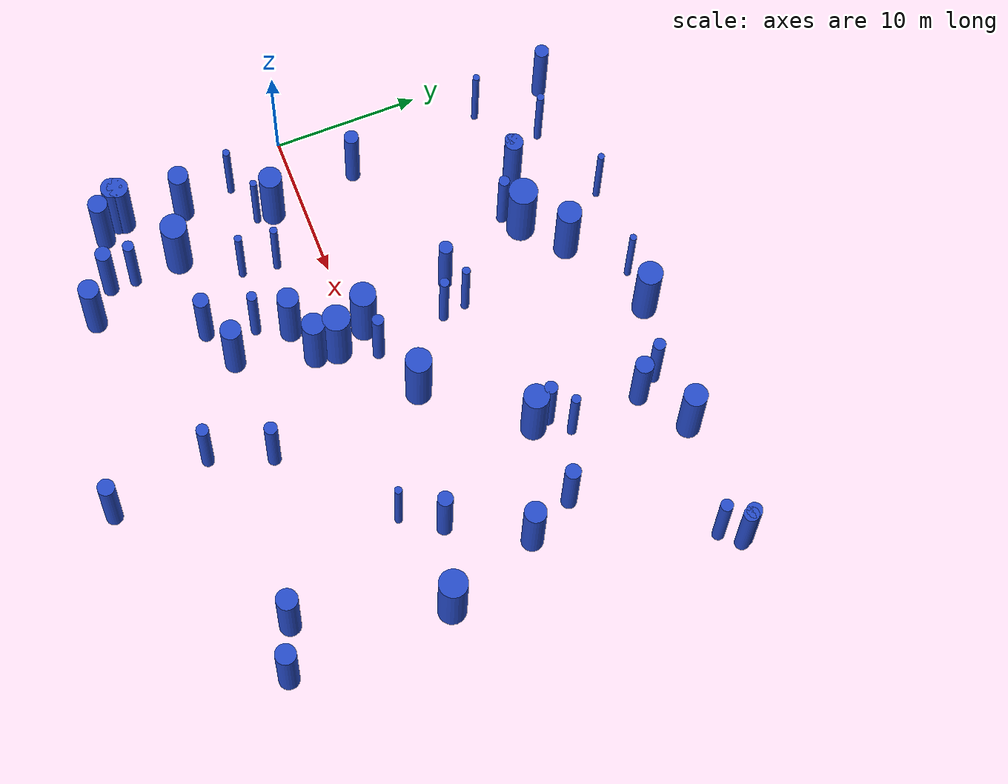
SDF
<sdf version="1.7">
 <world name="default">
  <model name="11">
   <static>1</static>
   <link name="link">
    <inertial>
     <mass>2</mass>
     <inertia><ixx>6.40175</ixx><ixy>0</ixy><ixz>0</ixz><iyy>6.40175</iyy><iyz>0</iyz><izz>0.803492</izz></inertia>
    </inertial>
    <collision name="collision">
     <geometry><cylinder><length>6</length><radius>0.896377</radius></cylinder></geometry>
     <surface><contact><collide_without_contact>1</collide_without_contact></contact></surface>
    </collision>
    <visual name="visual">
     <geometry><cylinder><length>6</length><radius>0.896377</radius></cylinder></geometry>
     <material>
      <script><uri>file://media/materials/scripts/gazebo.material</uri><name>Gazebo/Blue</name></script>
     </material>
    </visual>
    <gravity>0</gravity>
   </link>
   <pose>20.6606 2.5794 3 0 -0 0</pose>
  </model>
  <model name="17">
   <static>1</static>
   <link name="link">
    <inertial>
     <mass>2</mass>
     <inertia><ixx>6.09343</ixx><ixy>0</ixy><ixz>0</ixz><iyy>6.09343</iyy><iyz>0</iyz><izz>0.186852</izz></inertia>
    </inertial>
    <collision name="collision">
     <geometry><cylinder><length>6</length><radius>0.432264</radius></cylinder></geometry>
     <surface><contact><collide_without_contact>1</collide_without_contact></contact></surface>
    </collision>
    <visual name="visual">
     <geometry><cylinder><length>6</length><radius>0.432264</radius></cylinder></geometry>
     <material>
      <script><uri>file://media/materials/scripts/gazebo.material</uri><name>Gazebo/Blue</name></script>
     </material>
    </visual>
    <gravity>0</gravity>
   </link>
   <pose>20.2077 -12.26 3 0 -0 0</pose>
  </model>
  <model name="25">
   <static>1</static>
   <link name="link">
    <inertial>
     <mass>2</mass>
     <inertia><ixx>6.38374</ixx><ixy>0</ixy><ixz>0</ixz><iyy>6.38374</iyy><iyz>0</iyz><izz>0.767485</izz></inertia>
    </inertial>
    <collision name="collision">
     <geometry><cylinder><length>6</length><radius>0.876062</radius></cylinder></geometry>
     <surface><contact><collide_without_contact>1</collide_without_contact></contact></surface>
    </collision>
    <visual name="visual">
     <geometry><cylinder><length>6</length><radius>0.876062</radius></cylinder></geometry>
     <material>
      <script><uri>file://media/materials/scripts/gazebo.material</uri><name>Gazebo/Blue</name></script>
     </material>
    </visual>
    <gravity>0</gravity>
   </link>
   <pose>25.7538 8.85397 3 0 -0 0</pose>
  </model>
  <model name="27">
   <static>1</static>
   <link name="link">
    <inertial>
     <mass>2</mass>
     <inertia>
      <ixx>6.03934</ixx>
      <ixy>0</ixy>
      <ixz>0</ixz>
      <iyy>6.03934</iyy>
      <iyz>0</iyz>
      <izz>0.0786724</izz>
     </inertia>
    </inertial>
    <collision name="collision">
     <geometry><cylinder><length>6</length><radius>0.280486</radius></cylinder></geometry>
     <surface><contact><collide_without_contact>1</collide_without_contact></contact></surface>
    </collision>
    <visual name="visual">
     <geometry><cylinder><length>6</length><radius>0.280486</radius></cylinder></geometry>
     <material>
      <script><uri>file://media/materials/scripts/gazebo.material</uri><name>Gazebo/Blue</name></script>
     </material>
    </visual>
    <gravity>0</gravity>
   </link>
   <pose>15.8342 7.79594 3 0 -0 0</pose>
  </model>
  <model name="30">
   <static>1</static>
   <link name="link">
    <inertial>
     <mass>2</mass>
     <inertia><ixx>6.13157</ixx><ixy>0</ixy><ixz>0</ixz><iyy>6.13157</iyy><iyz>0</iyz><izz>0.263136</izz></inertia>
    </inertial>
    <collision name="collision">
     <geometry><cylinder><length>6</length><radius>0.512968</radius></cylinder></geometry>
     <surface><contact><collide_without_contact>1</collide_without_contact></contact></surface>
    </collision>
    <visual name="visual">
     <geometry><cylinder><length>6</length><radius>0.512968</radius></cylinder></geometry>
     <material>
      <script><uri>file://media/materials/scripts/gazebo.material</uri><name>Gazebo/Blue</name></script>
     </material>
    </visual>
    <gravity>0</gravity>
   </link>
   <pose>38.1472 18.7277 3 0 -0 0</pose>
  </model>
  <model name="33">
   <static>1</static>
   <link name="link">
    <inertial>
     <mass>2</mass>
     <inertia><ixx>6.14607</ixx><ixy>0</ixy><ixz>0</ixz><iyy>6.14607</iyy><iyz>0</iyz><izz>0.292135</izz></inertia>
    </inertial>
    <collision name="collision">
     <geometry><cylinder><length>6</length><radius>0.540495</radius></cylinder></geometry>
     <surface><contact><collide_without_contact>1</collide_without_contact></contact></surface>
    </collision>
    <visual name="visual">
     <geometry><cylinder><length>6</length><radius>0.540495</radius></cylinder></geometry>
     <material>
      <script><uri>file://media/materials/scripts/gazebo.material</uri><name>Gazebo/Blue</name></script>
     </material>
    </visual>
    <gravity>0</gravity>
   </link>
   <pose>11.5808 -9.34368 3 0 -0 0</pose>
  </model>
  <model name="34">
   <static>1</static>
   <link name="link">
    <inertial>
     <mass>2</mass>
     <inertia><ixx>6.25743</ixx><ixy>0</ixy><ixz>0</ixz><iyy>6.25743</iyy><iyz>0</iyz><izz>0.514864</izz></inertia>
    </inertial>
    <collision name="collision">
     <geometry><cylinder><length>6</length><radius>0.717541</radius></cylinder></geometry>
     <surface><contact><collide_without_contact>1</collide_without_contact></contact></surface>
    </collision>
    <visual name="visual">
     <geometry><cylinder><length>6</length><radius>0.717541</radius></cylinder></geometry>
     <material>
      <script><uri>file://media/materials/scripts/gazebo.material</uri><name>Gazebo/Blue</name></script>
     </material>
    </visual>
    <gravity>0</gravity>
   </link>
   <pose>36.2442 -12.3285 3 0 -0 0</pose>
  </model>
  <model name="35">
   <static>1</static>
   <link name="link">
    <inertial>
     <mass>2</mass>
     <inertia><ixx>6.0268</ixx><ixy>0</ixy><ixz>0</ixz><iyy>6.0268</iyy><iyz>0</iyz><izz>0.0535936</izz></inertia>
    </inertial>
    <collision name="collision">
     <geometry><cylinder><length>6</length><radius>0.231503</radius></cylinder></geometry>
     <surface><contact><collide_without_contact>1</collide_without_contact></contact></surface>
    </collision>
    <visual name="visual">
     <geometry><cylinder><length>6</length><radius>0.231503</radius></cylinder></geometry>
     <material>
      <script><uri>file://media/materials/scripts/gazebo.material</uri><name>Gazebo/Blue</name></script>
     </material>
    </visual>
    <gravity>0</gravity>
   </link>
   <pose>11.2769 19.3033 3 0 -0 0</pose>
  </model>
  <model name="43">
   <static>1</static>
   <link name="link">
    <inertial>
     <mass>2</mass>
     <inertia><ixx>6.09019</ixx><ixy>0</ixy><ixz>0</ixz><iyy>6.09019</iyy><iyz>0</iyz><izz>0.180376</izz></inertia>
    </inertial>
    <collision name="collision">
     <geometry><cylinder><length>6</length><radius>0.424707</radius></cylinder></geometry>
     <surface><contact><collide_without_contact>1</collide_without_contact></contact></surface>
    </collision>
    <visual name="visual">
     <geometry><cylinder><length>6</length><radius>0.424707</radius></cylinder></geometry>
     <material>
      <script><uri>file://media/materials/scripts/gazebo.material</uri><name>Gazebo/Blue</name></script>
     </material>
    </visual>
    <gravity>0</gravity>
   </link>
   <pose>25.2338 17.7403 3 0 -0 0</pose>
  </model>
  <model name="44">
   <static>1</static>
   <link name="link">
    <inertial>
     <mass>2</mass>
     <inertia><ixx>6.09258</ixx><ixy>0</ixy><ixz>0</ixz><iyy>6.09258</iyy><iyz>0</iyz><izz>0.18516</izz></inertia>
    </inertial>
    <collision name="collision">
     <geometry><cylinder><length>6</length><radius>0.430302</radius></cylinder></geometry>
     <surface><contact><collide_without_contact>1</collide_without_contact></contact></surface>
    </collision>
    <visual name="visual">
     <geometry><cylinder><length>6</length><radius>0.430302</radius></cylinder></geometry>
     <material>
      <script><uri>file://media/materials/scripts/gazebo.material</uri><name>Gazebo/Blue</name></script>
     </material>
    </visual>
    <gravity>0</gravity>
   </link>
   <pose>37.0413 17.4916 3 0 -0 0</pose>
  </model>
  <model name="46">
   <static>1</static>
   <link name="link">
    <inertial>
     <mass>2</mass>
     <inertia><ixx>6.25968</ixx><ixy>0</ixy><ixz>0</ixz><iyy>6.25968</iyy><iyz>0</iyz><izz>0.51936</izz></inertia>
    </inertial>
    <collision name="collision">
     <geometry><cylinder><length>6</length><radius>0.720666</radius></cylinder></geometry>
     <surface><contact><collide_without_contact>1</collide_without_contact></contact></surface>
    </collision>
    <visual name="visual">
     <geometry><cylinder><length>6</length><radius>0.720666</radius></cylinder></geometry>
     <material>
      <script><uri>file://media/materials/scripts/gazebo.material</uri><name>Gazebo/Blue</name></script>
     </material>
    </visual>
    <gravity>0</gravity>
   </link>
   <pose>1.87089 -11.8641 3 0 -0 0</pose>
  </model>
  <model name="50">
   <static>1</static>
   <link name="link">
    <inertial>
     <mass>2</mass>
     <inertia><ixx>6.08298</ixx><ixy>0</ixy><ixz>0</ixz><iyy>6.08298</iyy><iyz>0</iyz><izz>0.16596</izz></inertia>
    </inertial>
    <collision name="collision">
     <geometry><cylinder><length>6</length><radius>0.407382</radius></cylinder></geometry>
     <surface><contact><collide_without_contact>1</collide_without_contact></contact></surface>
    </collision>
    <visual name="visual">
     <geometry><cylinder><length>6</length><radius>0.407382</radius></cylinder></geometry>
     <material>
      <script><uri>file://media/materials/scripts/gazebo.material</uri><name>Gazebo/Blue</name></script>
     </material>
    </visual>
    <gravity>0</gravity>
   </link>
   <pose>17.0476 1.08046 3 0 -0 0</pose>
  </model>
  <model name="53">
   <static>1</static>
   <link name="link">
    <inertial>
     <mass>2</mass>
     <inertia><ixx>6.36119</ixx><ixy>0</ixy><ixz>0</ixz><iyy>6.36119</iyy><iyz>0</iyz><izz>0.722384</izz></inertia>
    </inertial>
    <collision name="collision">
     <geometry><cylinder><length>6</length><radius>0.849932</radius></cylinder></geometry>
     <surface><contact><collide_without_contact>1</collide_without_contact></contact></surface>
    </collision>
    <visual name="visual">
     <geometry><cylinder><length>6</length><radius>0.849932</radius></cylinder></geometry>
     <material>
      <script><uri>file://media/materials/scripts/gazebo.material</uri><name>Gazebo/Blue</name></script>
     </material>
    </visual>
    <gravity>0</gravity>
   </link>
   <pose>20.3305 19.1279 3 0 -0 0</pose>
  </model>
  <model name="55">
   <static>1</static>
   <link name="link">
    <inertial>
     <mass>2</mass>
     <inertia><ixx>6.27588</ixx><ixy>0</ixy><ixz>0</ixz><iyy>6.27588</iyy><iyz>0</iyz><izz>0.55177</izz></inertia>
    </inertial>
    <collision name="collision">
     <geometry><cylinder><length>6</length><radius>0.742812</radius></cylinder></geometry>
     <surface><contact><collide_without_contact>1</collide_without_contact></contact></surface>
    </collision>
    <visual name="visual">
     <geometry><cylinder><length>6</length><radius>0.742812</radius></cylinder></geometry>
     <material>
      <script><uri>file://media/materials/scripts/gazebo.material</uri><name>Gazebo/Blue</name></script>
     </material>
    </visual>
    <gravity>0</gravity>
   </link>
   <pose>32.8908 -11.0334 3 0 -0 0</pose>
  </model>
  <model name="58">
   <static>1</static>
   <link name="link">
    <inertial>
     <mass>2</mass>
     <inertia><ixx>6.48296</ixx><ixy>0</ixy><ixz>0</ixz><iyy>6.48296</iyy><iyz>0</iyz><izz>0.96592</izz></inertia>
    </inertial>
    <collision name="collision">
     <geometry><cylinder><length>6</length><radius>0.982812</radius></cylinder></geometry>
     <surface><contact><collide_without_contact>1</collide_without_contact></contact></surface>
    </collision>
    <visual name="visual">
     <geometry><cylinder><length>6</length><radius>0.982812</radius></cylinder></geometry>
     <material>
      <script><uri>file://media/materials/scripts/gazebo.material</uri><name>Gazebo/Blue</name></script>
     </material>
    </visual>
    <gravity>0</gravity>
   </link>
   <pose>11.804 13.4618 3 0 -0 0</pose>
  </model>
  <model name="59">
   <static>1</static>
   <link name="link">
    <inertial>
     <mass>2</mass>
     <inertia>
      <ixx>6.03513</ixx>
      <ixy>0</ixy>
      <ixz>0</ixz>
      <iyy>6.03513</iyy>
      <iyz>0</iyz>
      <izz>0.0702655</izz>
     </inertia>
    </inertial>
    <collision name="collision">
     <geometry><cylinder><length>6</length><radius>0.265076</radius></cylinder></geometry>
     <surface><contact><collide_without_contact>1</collide_without_contact></contact></surface>
    </collision>
    <visual name="visual">
     <geometry><cylinder><length>6</length><radius>0.265076</radius></cylinder></geometry>
     <material>
      <script><uri>file://media/materials/scripts/gazebo.material</uri><name>Gazebo/Blue</name></script>
     </material>
    </visual>
    <gravity>0</gravity>
   </link>
   <pose>28.5908 -1.85594 3 0 -0 0</pose>
  </model>
  <model name="60">
   <static>1</static>
   <link name="link">
    <inertial>
     <mass>2</mass>
     <inertia><ixx>6.39524</ixx><ixy>0</ixy><ixz>0</ixz><iyy>6.39524</iyy><iyz>0</iyz><izz>0.790477</izz></inertia>
    </inertial>
    <collision name="collision">
     <geometry><cylinder><length>6</length><radius>0.889088</radius></cylinder></geometry>
     <surface><contact><collide_without_contact>1</collide_without_contact></contact></surface>
    </collision>
    <visual name="visual">
     <geometry><cylinder><length>6</length><radius>0.889088</radius></cylinder></geometry>
     <material>
      <script><uri>file://media/materials/scripts/gazebo.material</uri><name>Gazebo/Blue</name></script>
     </material>
    </visual>
    <gravity>0</gravity>
   </link>
   <pose>14.9939 0.797519 3 0 -0 0</pose>
  </model>
  <model name="66">
   <static>1</static>
   <link name="link">
    <inertial>
     <mass>2</mass>
     <inertia><ixx>6.22425</ixx><ixy>0</ixy><ixz>0</ixz><iyy>6.22425</iyy><iyz>0</iyz><izz>0.448499</izz></inertia>
    </inertial>
    <collision name="collision">
     <geometry><cylinder><length>6</length><radius>0.6697</radius></cylinder></geometry>
     <surface><contact><collide_without_contact>1</collide_without_contact></contact></surface>
    </collision>
    <visual name="visual">
     <geometry><cylinder><length>6</length><radius>0.6697</radius></cylinder></geometry>
     <material>
      <script><uri>file://media/materials/scripts/gazebo.material</uri><name>Gazebo/Blue</name></script>
     </material>
    </visual>
    <gravity>0</gravity>
   </link>
   <pose>2.54749 -13.4917 3 0 -0 0</pose>
  </model>
  <model name="68">
   <static>1</static>
   <link name="link">
    <inertial>
     <mass>2</mass>
     <inertia>
      <ixx>6.02714</ixx>
      <ixy>0</ixy>
      <ixz>0</ixz>
      <iyy>6.02714</iyy>
      <iyz>0</iyz>
      <izz>0.0542715</izz>
     </inertia>
    </inertial>
    <collision name="collision">
     <geometry><cylinder><length>6</length><radius>0.232962</radius></cylinder></geometry>
     <surface><contact><collide_without_contact>1</collide_without_contact></contact></surface>
    </collision>
    <visual name="visual">
     <geometry><cylinder><length>6</length><radius>0.232962</radius></cylinder></geometry>
     <material>
      <script><uri>file://media/materials/scripts/gazebo.material</uri><name>Gazebo/Blue</name></script>
     </material>
    </visual>
    <gravity>0</gravity>
   </link>
   <pose>17.5427 19.052 3 0 -0 0</pose>
  </model>
  <model name="70">
   <static>1</static>
   <link name="link">
    <inertial>
     <mass>2</mass>
     <inertia><ixx>6.07674</ixx><ixy>0</ixy><ixz>0</ixz><iyy>6.07674</iyy><iyz>0</iyz><izz>0.15348</izz></inertia>
    </inertial>
    <collision name="collision">
     <geometry><cylinder><length>6</length><radius>0.391765</radius></cylinder></geometry>
     <surface><contact><collide_without_contact>1</collide_without_contact></contact></surface>
    </collision>
    <visual name="visual">
     <geometry><cylinder><length>6</length><radius>0.391765</radius></cylinder></geometry>
     <material>
      <script><uri>file://media/materials/scripts/gazebo.material</uri><name>Gazebo/Blue</name></script>
     </material>
    </visual>
    <gravity>0</gravity>
   </link>
   <pose>6.17959 -12.5655 3 0 -0 0</pose>
  </model>
  <model name="73">
   <static>1</static>
   <link name="link">
    <inertial>
     <mass>2</mass>
     <inertia><ixx>6.48116</ixx><ixy>0</ixy><ixz>0</ixz><iyy>6.48116</iyy><iyz>0</iyz><izz>0.962329</izz></inertia>
    </inertial>
    <collision name="collision">
     <geometry><cylinder><length>6</length><radius>0.980984</radius></cylinder></geometry>
     <surface><contact><collide_without_contact>1</collide_without_contact></contact></surface>
    </collision>
    <visual name="visual">
     <geometry><cylinder><length>6</length><radius>0.980984</radius></cylinder></geometry>
     <material>
      <script><uri>file://media/materials/scripts/gazebo.material</uri><name>Gazebo/Blue</name></script>
     </material>
    </visual>
    <gravity>0</gravity>
   </link>
   <pose>35.6719 -0.795508 3 0 -0 0</pose>
  </model>
  <model name="74">
   <static>1</static>
   <link name="link">
    <inertial>
     <mass>2</mass>
     <inertia><ixx>6.14646</ixx><ixy>0</ixy><ixz>0</ixz><iyy>6.14646</iyy><iyz>0</iyz><izz>0.292928</izz></inertia>
    </inertial>
    <collision name="collision">
     <geometry><cylinder><length>6</length><radius>0.541228</radius></cylinder></geometry>
     <surface><contact><collide_without_contact>1</collide_without_contact></contact></surface>
    </collision>
    <visual name="visual">
     <geometry><cylinder><length>6</length><radius>0.541228</radius></cylinder></geometry>
     <material>
      <script><uri>file://media/materials/scripts/gazebo.material</uri><name>Gazebo/Blue</name></script>
     </material>
    </visual>
    <gravity>0</gravity>
   </link>
   <pose>31.4047 9.13593 3 0 -0 0</pose>
  </model>
  <model name="76">
   <static>1</static>
   <link name="link">
    <inertial>
     <mass>2</mass>
     <inertia><ixx>6.25283</ixx><ixy>0</ixy><ixz>0</ixz><iyy>6.25283</iyy><iyz>0</iyz><izz>0.505667</izz></inertia>
    </inertial>
    <collision name="collision">
     <geometry><cylinder><length>6</length><radius>0.711103</radius></cylinder></geometry>
     <surface><contact><collide_without_contact>1</collide_without_contact></contact></surface>
    </collision>
    <visual name="visual">
     <geometry><cylinder><length>6</length><radius>0.711103</radius></cylinder></geometry>
     <material>
      <script><uri>file://media/materials/scripts/gazebo.material</uri><name>Gazebo/Blue</name></script>
     </material>
    </visual>
    <gravity>0</gravity>
   </link>
   <pose>8.20094 -16.0225 3 0 -0 0</pose>
  </model>
  <model name="77">
   <static>1</static>
   <link name="link">
    <inertial>
     <mass>2</mass>
     <inertia>
      <ixx>6.03098</ixx>
      <ixy>0</ixy>
      <ixz>0</ixz>
      <iyy>6.03098</iyy>
      <iyz>0</iyz>
      <izz>0.0619636</izz>
     </inertia>
    </inertial>
    <collision name="collision">
     <geometry><cylinder><length>6</length><radius>0.248925</radius></cylinder></geometry>
     <surface><contact><collide_without_contact>1</collide_without_contact></contact></surface>
    </collision>
    <visual name="visual">
     <geometry><cylinder><length>6</length><radius>0.248925</radius></cylinder></geometry>
     <material>
      <script><uri>file://media/materials/scripts/gazebo.material</uri><name>Gazebo/Blue</name></script>
     </material>
    </visual>
    <gravity>0</gravity>
   </link>
   <pose>2.03012 -4.19481 3 0 -0 0</pose>
  </model>
  <model name="79">
   <static>1</static>
   <link name="link">
    <inertial>
     <mass>2</mass>
     <inertia><ixx>6.14495</ixx><ixy>0</ixy><ixz>0</ixz><iyy>6.14495</iyy><iyz>0</iyz><izz>0.289907</izz></inertia>
    </inertial>
    <collision name="collision">
     <geometry><cylinder><length>6</length><radius>0.53843</radius></cylinder></geometry>
     <surface><contact><collide_without_contact>1</collide_without_contact></contact></surface>
    </collision>
    <visual name="visual">
     <geometry><cylinder><length>6</length><radius>0.53843</radius></cylinder></geometry>
     <material>
      <script><uri>file://media/materials/scripts/gazebo.material</uri><name>Gazebo/Blue</name></script>
     </material>
    </visual>
    <gravity>0</gravity>
   </link>
   <pose>37.9749 19.0124 3 0 -0 0</pose>
  </model>
  <model name="82">
   <static>1</static>
   <link name="link">
    <inertial>
     <mass>2</mass>
     <inertia><ixx>6.27494</ixx><ixy>0</ixy><ixz>0</ixz><iyy>6.27494</iyy><iyz>0</iyz><izz>0.549877</izz></inertia>
    </inertial>
    <collision name="collision">
     <geometry><cylinder><length>6</length><radius>0.741537</radius></cylinder></geometry>
     <surface><contact><collide_without_contact>1</collide_without_contact></contact></surface>
    </collision>
    <visual name="visual">
     <geometry><cylinder><length>6</length><radius>0.741537</radius></cylinder></geometry>
     <material>
      <script><uri>file://media/materials/scripts/gazebo.material</uri><name>Gazebo/Blue</name></script>
     </material>
    </visual>
    <gravity>0</gravity>
   </link>
   <pose>13.4562 -3.93051 3 0 -0 0</pose>
  </model>
  <model name="90">
   <static>1</static>
   <link name="link">
    <inertial>
     <mass>2</mass>
     <inertia><ixx>6.05078</ixx><ixy>0</ixy><ixz>0</ixz><iyy>6.05078</iyy><iyz>0</iyz><izz>0.101566</izz></inertia>
    </inertial>
    <collision name="collision">
     <geometry><cylinder><length>6</length><radius>0.318694</radius></cylinder></geometry>
     <surface><contact><collide_without_contact>1</collide_without_contact></contact></surface>
    </collision>
    <visual name="visual">
     <geometry><cylinder><length>6</length><radius>0.318694</radius></cylinder></geometry>
     <material>
      <script><uri>file://media/materials/scripts/gazebo.material</uri><name>Gazebo/Blue</name></script>
     </material>
    </visual>
    <gravity>0</gravity>
   </link>
   <pose>26.8432 11.1855 3 0 -0 0</pose>
  </model>
  <model name="93">
   <static>1</static>
   <link name="link">
    <inertial>
     <mass>2</mass>
     <inertia>
      <ixx>6.02703</ixx>
      <ixy>0</ixy>
      <ixz>0</ixz>
      <iyy>6.02703</iyy>
      <iyz>0</iyz>
      <izz>0.0540589</izz>
     </inertia>
    </inertial>
    <collision name="collision">
     <geometry><cylinder><length>6</length><radius>0.232506</radius></cylinder></geometry>
     <surface><contact><collide_without_contact>1</collide_without_contact></contact></surface>
    </collision>
    <visual name="visual">
     <geometry><cylinder><length>6</length><radius>0.232506</radius></cylinder></geometry>
     <material>
      <script><uri>file://media/materials/scripts/gazebo.material</uri><name>Gazebo/Blue</name></script>
     </material>
    </visual>
    <gravity>0</gravity>
   </link>
   <pose>2.75391 13.5982 3 0 -0 0</pose>
  </model>
  <model name="94">
   <static>1</static>
   <link name="link">
    <inertial>
     <mass>2</mass>
     <inertia><ixx>6.05397</ixx><ixy>0</ixy><ixz>0</ixz><iyy>6.05397</iyy><iyz>0</iyz><izz>0.107946</izz></inertia>
    </inertial>
    <collision name="collision">
     <geometry><cylinder><length>6</length><radius>0.328552</radius></cylinder></geometry>
     <surface><contact><collide_without_contact>1</collide_without_contact></contact></surface>
    </collision>
    <visual name="visual">
     <geometry><cylinder><length>6</length><radius>0.328552</radius></cylinder></geometry>
     <material>
      <script><uri>file://media/materials/scripts/gazebo.material</uri><name>Gazebo/Blue</name></script>
     </material>
    </visual>
    <gravity>0</gravity>
   </link>
   <pose>16.1127 6.14078 3 0 -0 0</pose>
  </model>
  <model name="100">
   <static>1</static>
   <link name="link">
    <inertial>
     <mass>2</mass>
     <inertia><ixx>6.26324</ixx><ixy>0</ixy><ixz>0</ixz><iyy>6.26324</iyy><iyz>0</iyz><izz>0.526477</izz></inertia>
    </inertial>
    <collision name="collision">
     <geometry><cylinder><length>6</length><radius>0.725588</radius></cylinder></geometry>
     <surface><contact><collide_without_contact>1</collide_without_contact></contact></surface>
    </collision>
    <visual name="visual">
     <geometry><cylinder><length>6</length><radius>0.725588</radius></cylinder></geometry>
     <material>
      <script><uri>file://media/materials/scripts/gazebo.material</uri><name>Gazebo/Blue</name></script>
     </material>
    </visual>
    <gravity>0</gravity>
   </link>
   <pose>1.74931 -12.2597 3 0 -0 0</pose>
  </model>
  <model name="101">
   <static>1</static>
   <link name="link">
    <inertial>
     <mass>2</mass>
     <inertia><ixx>6.08143</ixx><ixy>0</ixy><ixz>0</ixz><iyy>6.08143</iyy><iyz>0</iyz><izz>0.162867</izz></inertia>
    </inertial>
    <collision name="collision">
     <geometry><cylinder><length>6</length><radius>0.403568</radius></cylinder></geometry>
     <surface><contact><collide_without_contact>1</collide_without_contact></contact></surface>
    </collision>
    <visual name="visual">
     <geometry><cylinder><length>6</length><radius>0.403568</radius></cylinder></geometry>
     <material>
      <script><uri>file://media/materials/scripts/gazebo.material</uri><name>Gazebo/Blue</name></script>
     </material>
    </visual>
    <gravity>0</gravity>
   </link>
   <pose>7.91269 14.1049 3 0 -0 0</pose>
  </model>
  <model name="103">
   <static>1</static>
   <link name="link">
    <inertial>
     <mass>2</mass>
     <inertia><ixx>6.25403</ixx><ixy>0</ixy><ixz>0</ixz><iyy>6.25403</iyy><iyz>0</iyz><izz>0.508067</izz></inertia>
    </inertial>
    <collision name="collision">
     <geometry><cylinder><length>6</length><radius>0.712788</radius></cylinder></geometry>
     <surface><contact><collide_without_contact>1</collide_without_contact></contact></surface>
    </collision>
    <visual name="visual">
     <geometry><cylinder><length>6</length><radius>0.712788</radius></cylinder></geometry>
     <material>
      <script><uri>file://media/materials/scripts/gazebo.material</uri><name>Gazebo/Blue</name></script>
     </material>
    </visual>
    <gravity>0</gravity>
   </link>
   <pose>14.2634 -8.21294 3 0 -0 0</pose>
  </model>
  <model name="104">
   <static>1</static>
   <link name="link">
    <inertial>
     <mass>2</mass>
     <inertia>
      <ixx>6.02987</ixx>
      <ixy>0</ixy>
      <ixz>0</ixz>
      <iyy>6.02987</iyy>
      <iyz>0</iyz>
      <izz>0.0597419</izz>
     </inertia>
    </inertial>
    <collision name="collision">
     <geometry><cylinder><length>6</length><radius>0.244422</radius></cylinder></geometry>
     <surface><contact><collide_without_contact>1</collide_without_contact></contact></surface>
    </collision>
    <visual name="visual">
     <geometry><cylinder><length>6</length><radius>0.244422</radius></cylinder></geometry>
     <material>
      <script><uri>file://media/materials/scripts/gazebo.material</uri><name>Gazebo/Blue</name></script>
     </material>
    </visual>
    <gravity>0</gravity>
   </link>
   <pose>4.82024 -3.24521 3 0 -0 0</pose>
  </model>
  <model name="111">
   <static>1</static>
   <link name="link">
    <inertial>
     <mass>2</mass>
     <inertia><ixx>6.11059</ixx><ixy>0</ixy><ixz>0</ixz><iyy>6.11059</iyy><iyz>0</iyz><izz>0.221175</izz></inertia>
    </inertial>
    <collision name="collision">
     <geometry><cylinder><length>6</length><radius>0.470292</radius></cylinder></geometry>
     <surface><contact><collide_without_contact>1</collide_without_contact></contact></surface>
    </collision>
    <visual name="visual">
     <geometry><cylinder><length>6</length><radius>0.470292</radius></cylinder></geometry>
     <material>
      <script><uri>file://media/materials/scripts/gazebo.material</uri><name>Gazebo/Blue</name></script>
     </material>
    </visual>
    <gravity>0</gravity>
   </link>
   <pose>13.7857 7.1295 3 0 -0 0</pose>
  </model>
  <model name="112">
   <static>1</static>
   <link name="link">
    <inertial>
     <mass>2</mass>
     <inertia><ixx>6.34516</ixx><ixy>0</ixy><ixz>0</ixz><iyy>6.34516</iyy><iyz>0</iyz><izz>0.690317</izz></inertia>
    </inertial>
    <collision name="collision">
     <geometry><cylinder><length>6</length><radius>0.830853</radius></cylinder></geometry>
     <surface><contact><collide_without_contact>1</collide_without_contact></contact></surface>
    </collision>
    <visual name="visual">
     <geometry><cylinder><length>6</length><radius>0.830853</radius></cylinder></geometry>
     <material>
      <script><uri>file://media/materials/scripts/gazebo.material</uri><name>Gazebo/Blue</name></script>
     </material>
    </visual>
    <gravity>0</gravity>
   </link>
   <pose>14.3305 15.7871 3 0 -0 0</pose>
  </model>
  <model name="116">
   <static>1</static>
   <link name="link">
    <inertial>
     <mass>2</mass>
     <inertia>
      <ixx>6.03387</ixx>
      <ixy>0</ixy>
      <ixz>0</ixz>
      <iyy>6.03387</iyy>
      <iyz>0</iyz>
      <izz>0.0677413</izz>
     </inertia>
    </inertial>
    <collision name="collision">
     <geometry><cylinder><length>6</length><radius>0.260272</radius></cylinder></geometry>
     <surface><contact><collide_without_contact>1</collide_without_contact></contact></surface>
    </collision>
    <visual name="visual">
     <geometry><cylinder><length>6</length><radius>0.260272</radius></cylinder></geometry>
     <material>
      <script><uri>file://media/materials/scripts/gazebo.material</uri><name>Gazebo/Blue</name></script>
     </material>
    </visual>
    <gravity>0</gravity>
   </link>
   <pose>5.70113 17.1455 3 0 -0 0</pose>
  </model>
  <model name="118">
   <static>1</static>
   <link name="link">
    <inertial>
     <mass>2</mass>
     <inertia><ixx>6.06948</ixx><ixy>0</ixy><ixz>0</ixz><iyy>6.06948</iyy><iyz>0</iyz><izz>0.138968</izz></inertia>
    </inertial>
    <collision name="collision">
     <geometry><cylinder><length>6</length><radius>0.372784</radius></cylinder></geometry>
     <surface><contact><collide_without_contact>1</collide_without_contact></contact></surface>
    </collision>
    <visual name="visual">
     <geometry><cylinder><length>6</length><radius>0.372784</radius></cylinder></geometry>
     <material>
      <script><uri>file://media/materials/scripts/gazebo.material</uri><name>Gazebo/Blue</name></script>
     </material>
    </visual>
    <gravity>0</gravity>
   </link>
   <pose>10.6507 12.5376 3 0 -0 0</pose>
  </model>
  <model name="122">
   <static>1</static>
   <link name="link">
    <inertial>
     <mass>2</mass>
     <inertia><ixx>6.31002</ixx><ixy>0</ixy><ixz>0</ixz><iyy>6.31002</iyy><iyz>0</iyz><izz>0.620036</izz></inertia>
    </inertial>
    <collision name="collision">
     <geometry><cylinder><length>6</length><radius>0.787423</radius></cylinder></geometry>
     <surface><contact><collide_without_contact>1</collide_without_contact></contact></surface>
    </collision>
    <visual name="visual">
     <geometry><cylinder><length>6</length><radius>0.787423</radius></cylinder></geometry>
     <material>
      <script><uri>file://media/materials/scripts/gazebo.material</uri><name>Gazebo/Blue</name></script>
     </material>
    </visual>
    <gravity>0</gravity>
   </link>
   <pose>4.80916 -2.04735 3 0 -0 0</pose>
  </model>
  <model name="124">
   <static>1</static>
   <link name="link">
    <inertial>
     <mass>2</mass>
     <inertia><ixx>6.03454</ixx><ixy>0</ixy><ixz>0</ixz><iyy>6.03454</iyy><iyz>0</iyz><izz>0.06908</izz></inertia>
    </inertial>
    <collision name="collision">
     <geometry><cylinder><length>6</length><radius>0.262831</radius></cylinder></geometry>
     <surface><contact><collide_without_contact>1</collide_without_contact></contact></surface>
    </collision>
    <visual name="visual">
     <geometry><cylinder><length>6</length><radius>0.262831</radius></cylinder></geometry>
     <material>
      <script><uri>file://media/materials/scripts/gazebo.material</uri><name>Gazebo/Blue</name></script>
     </material>
    </visual>
    <gravity>0</gravity>
   </link>
   <pose>8.25881 -5.55588 3 0 -0 0</pose>
  </model>
  <model name="125">
   <static>1</static>
   <link name="link">
    <inertial>
     <mass>2</mass>
     <inertia><ixx>6.11439</ixx><ixy>0</ixy><ixz>0</ixz><iyy>6.11439</iyy><iyz>0</iyz><izz>0.228773</izz></inertia>
    </inertial>
    <collision name="collision">
     <geometry><cylinder><length>6</length><radius>0.478302</radius></cylinder></geometry>
     <surface><contact><collide_without_contact>1</collide_without_contact></contact></surface>
    </collision>
    <visual name="visual">
     <geometry><cylinder><length>6</length><radius>0.478302</radius></cylinder></geometry>
     <material>
      <script><uri>file://media/materials/scripts/gazebo.material</uri><name>Gazebo/Blue</name></script>
     </material>
    </visual>
    <gravity>0</gravity>
   </link>
   <pose>2.46519 18.5192 3 0 -0 0</pose>
  </model>
  <model name="128">
   <static>1</static>
   <link name="link">
    <inertial>
     <mass>2</mass>
     <inertia><ixx>6.12266</ixx><ixy>0</ixy><ixz>0</ixz><iyy>6.12266</iyy><iyz>0</iyz><izz>0.245326</izz></inertia>
    </inertial>
    <collision name="collision">
     <geometry><cylinder><length>6</length><radius>0.495304</radius></cylinder></geometry>
     <surface><contact><collide_without_contact>1</collide_without_contact></contact></surface>
    </collision>
    <visual name="visual">
     <geometry><cylinder><length>6</length><radius>0.495304</radius></cylinder></geometry>
     <material>
      <script><uri>file://media/materials/scripts/gazebo.material</uri><name>Gazebo/Blue</name></script>
     </material>
    </visual>
    <gravity>0</gravity>
   </link>
   <pose>3.93589 4.09007 3 0 -0 0</pose>
  </model>
  <model name="129">
   <static>1</static>
   <link name="link">
    <inertial>
     <mass>2</mass>
     <inertia><ixx>6.06111</ixx><ixy>0</ixy><ixz>0</ixz><iyy>6.06111</iyy><iyz>0</iyz><izz>0.122216</izz></inertia>
    </inertial>
    <collision name="collision">
     <geometry><cylinder><length>6</length><radius>0.349593</radius></cylinder></geometry>
     <surface><contact><collide_without_contact>1</collide_without_contact></contact></surface>
    </collision>
    <visual name="visual">
     <geometry><cylinder><length>6</length><radius>0.349593</radius></cylinder></geometry>
     <material>
      <script><uri>file://media/materials/scripts/gazebo.material</uri><name>Gazebo/Blue</name></script>
     </material>
    </visual>
    <gravity>0</gravity>
   </link>
   <pose>12.5101 -6.11326 3 0 -0 0</pose>
  </model>
  <model name="134">
   <static>1</static>
   <link name="link">
    <inertial>
     <mass>2</mass>
     <inertia><ixx>6.10247</ixx><ixy>0</ixy><ixz>0</ixz><iyy>6.10247</iyy><iyz>0</iyz><izz>0.204949</izz></inertia>
    </inertial>
    <collision name="collision">
     <geometry><cylinder><length>6</length><radius>0.452713</radius></cylinder></geometry>
     <surface><contact><collide_without_contact>1</collide_without_contact></contact></surface>
    </collision>
    <visual name="visual">
     <geometry><cylinder><length>6</length><radius>0.452713</radius></cylinder></geometry>
     <material>
      <script><uri>file://media/materials/scripts/gazebo.material</uri><name>Gazebo/Blue</name></script>
     </material>
    </visual>
    <gravity>0</gravity>
   </link>
   <pose>25.5167 9.96358 3 0 -0 0</pose>
  </model>
  <model name="135">
   <static>1</static>
   <link name="link">
    <inertial>
     <mass>2</mass>
     <inertia><ixx>6.14356</ixx><ixy>0</ixy><ixz>0</ixz><iyy>6.14356</iyy><iyz>0</iyz><izz>0.287112</izz></inertia>
    </inertial>
    <collision name="collision">
     <geometry><cylinder><length>6</length><radius>0.535828</radius></cylinder></geometry>
     <surface><contact><collide_without_contact>1</collide_without_contact></contact></surface>
    </collision>
    <visual name="visual">
     <geometry><cylinder><length>6</length><radius>0.535828</radius></cylinder></geometry>
     <material>
      <script><uri>file://media/materials/scripts/gazebo.material</uri><name>Gazebo/Blue</name></script>
     </material>
    </visual>
    <gravity>0</gravity>
   </link>
   <pose>6.11183 -14.3165 3 0 -0 0</pose>
  </model>
  <model name="136">
   <static>1</static>
   <link name="link">
    <inertial>
     <mass>2</mass>
     <inertia>
      <ixx>6.03441</ixx>
      <ixy>0</ixy>
      <ixz>0</ixz>
      <iyy>6.03441</iyy>
      <iyz>0</iyz>
      <izz>0.0688206</izz>
     </inertia>
    </inertial>
    <collision name="collision">
     <geometry><cylinder><length>6</length><radius>0.262337</radius></cylinder></geometry>
     <surface><contact><collide_without_contact>1</collide_without_contact></contact></surface>
    </collision>
    <visual name="visual">
     <geometry><cylinder><length>6</length><radius>0.262337</radius></cylinder></geometry>
     <material>
      <script><uri>file://media/materials/scripts/gazebo.material</uri><name>Gazebo/Blue</name></script>
     </material>
    </visual>
    <gravity>0</gravity>
   </link>
   <pose>8.54504 -3.14888 3 0 -0 0</pose>
  </model>
  <model name="137">
   <static>1</static>
   <link name="link">
    <inertial>
     <mass>2</mass>
     <inertia><ixx>6.31419</ixx><ixy>0</ixy><ixz>0</ixz><iyy>6.31419</iyy><iyz>0</iyz><izz>0.628378</izz></inertia>
    </inertial>
    <collision name="collision">
     <geometry><cylinder><length>6</length><radius>0.792703</radius></cylinder></geometry>
     <surface><contact><collide_without_contact>1</collide_without_contact></contact></surface>
    </collision>
    <visual name="visual">
     <geometry><cylinder><length>6</length><radius>0.792703</radius></cylinder></geometry>
     <material>
      <script><uri>file://media/materials/scripts/gazebo.material</uri><name>Gazebo/Blue</name></script>
     </material>
    </visual>
    <gravity>0</gravity>
   </link>
   <pose>15.7955 -2.98909 3 0 -0 0</pose>
  </model>
  <model name="140">
   <static>1</static>
   <link name="link">
    <inertial>
     <mass>2</mass>
     <inertia><ixx>6.10421</ixx><ixy>0</ixy><ixz>0</ixz><iyy>6.10421</iyy><iyz>0</iyz><izz>0.208426</izz></inertia>
    </inertial>
    <collision name="collision">
     <geometry><cylinder><length>6</length><radius>0.456537</radius></cylinder></geometry>
     <surface><contact><collide_without_contact>1</collide_without_contact></contact></surface>
    </collision>
    <visual name="visual">
     <geometry><cylinder><length>6</length><radius>0.456537</radius></cylinder></geometry>
     <material>
      <script><uri>file://media/materials/scripts/gazebo.material</uri><name>Gazebo/Blue</name></script>
     </material>
    </visual>
    <gravity>0</gravity>
   </link>
   <pose>21.6693 -8.07881 3 0 -0 0</pose>
  </model>
  <model name="144">
   <static>1</static>
   <link name="link">
    <inertial>
     <mass>2</mass>
     <inertia><ixx>6.45095</ixx><ixy>0</ixy><ixz>0</ixz><iyy>6.45095</iyy><iyz>0</iyz><izz>0.901899</izz></inertia>
    </inertial>
    <collision name="collision">
     <geometry><cylinder><length>6</length><radius>0.949684</radius></cylinder></geometry>
     <surface><contact><collide_without_contact>1</collide_without_contact></contact></surface>
    </collision>
    <visual name="visual">
     <geometry><cylinder><length>6</length><radius>0.949684</radius></cylinder></geometry>
     <material>
      <script><uri>file://media/materials/scripts/gazebo.material</uri><name>Gazebo/Blue</name></script>
     </material>
    </visual>
    <gravity>0</gravity>
   </link>
   <pose>15.9356 -1.43124 3 0 -0 0</pose>
  </model>
  <model name="145">
   <static>1</static>
   <link name="link">
    <inertial>
     <mass>2</mass>
     <inertia><ixx>6.17207</ixx><ixy>0</ixy><ixz>0</ixz><iyy>6.17207</iyy><iyz>0</iyz><izz>0.344135</izz></inertia>
    </inertial>
    <collision name="collision">
     <geometry><cylinder><length>6</length><radius>0.58663</radius></cylinder></geometry>
     <surface><contact><collide_without_contact>1</collide_without_contact></contact></surface>
    </collision>
    <visual name="visual">
     <geometry><cylinder><length>6</length><radius>0.58663</radius></cylinder></geometry>
     <material>
      <script><uri>file://media/materials/scripts/gazebo.material</uri><name>Gazebo/Blue</name></script>
     </material>
    </visual>
    <gravity>0</gravity>
   </link>
   <pose>21.7117 -19.3418 3 0 -0 0</pose>
  </model>
  <model name="146">
   <static>1</static>
   <link name="link">
    <inertial>
     <mass>2</mass>
     <inertia><ixx>6.2415</ixx><ixy>0</ixy><ixz>0</ixz><iyy>6.2415</iyy><iyz>0</iyz><izz>0.483009</izz></inertia>
    </inertial>
    <collision name="collision">
     <geometry><cylinder><length>6</length><radius>0.694988</radius></cylinder></geometry>
     <surface><contact><collide_without_contact>1</collide_without_contact></contact></surface>
    </collision>
    <visual name="visual">
     <geometry><cylinder><length>6</length><radius>0.694988</radius></cylinder></geometry>
     <material>
      <script><uri>file://media/materials/scripts/gazebo.material</uri><name>Gazebo/Blue</name></script>
     </material>
    </visual>
    <gravity>0</gravity>
   </link>
   <pose>2.46184 -7.7776 3 0 -0 0</pose>
  </model>
  <model name="149">
   <static>1</static>
   <link name="link">
    <inertial>
     <mass>2</mass>
     <inertia><ixx>6.32772</ixx><ixy>0</ixy><ixz>0</ixz><iyy>6.32772</iyy><iyz>0</iyz><izz>0.655446</izz></inertia>
    </inertial>
    <collision name="collision">
     <geometry><cylinder><length>6</length><radius>0.809596</radius></cylinder></geometry>
     <surface><contact><collide_without_contact>1</collide_without_contact></contact></surface>
    </collision>
    <visual name="visual">
     <geometry><cylinder><length>6</length><radius>0.809596</radius></cylinder></geometry>
     <material>
      <script><uri>file://media/materials/scripts/gazebo.material</uri><name>Gazebo/Blue</name></script>
     </material>
    </visual>
    <gravity>0</gravity>
   </link>
   <pose>29.3649 18.5769 3 0 -0 0</pose>
  </model>
  <model name="150">
   <static>1</static>
   <link name="link">
    <inertial>
     <mass>2</mass>
     <inertia><ixx>6.4113</ixx><ixy>0</ixy><ixz>0</ixz><iyy>6.4113</iyy><iyz>0</iyz><izz>0.822603</izz></inertia>
    </inertial>
    <collision name="collision">
     <geometry><cylinder><length>6</length><radius>0.906974</radius></cylinder></geometry>
     <surface><contact><collide_without_contact>1</collide_without_contact></contact></surface>
    </collision>
    <visual name="visual">
     <geometry><cylinder><length>6</length><radius>0.906974</radius></cylinder></geometry>
     <material>
      <script><uri>file://media/materials/scripts/gazebo.material</uri><name>Gazebo/Blue</name></script>
     </material>
    </visual>
    <gravity>0</gravity>
   </link>
   <pose>5.88814 -9.29541 3 0 -0 0</pose>
  </model>
  <model name="154">
   <static>1</static>
   <link name="link">
    <inertial>
     <mass>2</mass>
     <inertia><ixx>6.19478</ixx><ixy>0</ixy><ixz>0</ixz><iyy>6.19478</iyy><iyz>0</iyz><izz>0.389561</izz></inertia>
    </inertial>
    <collision name="collision">
     <geometry><cylinder><length>6</length><radius>0.624148</radius></cylinder></geometry>
     <surface><contact><collide_without_contact>1</collide_without_contact></contact></surface>
    </collision>
    <visual name="visual">
     <geometry><cylinder><length>6</length><radius>0.624148</radius></cylinder></geometry>
     <material>
      <script><uri>file://media/materials/scripts/gazebo.material</uri><name>Gazebo/Blue</name></script>
     </material>
    </visual>
    <gravity>0</gravity>
   </link>
   <pose>26.218 16.2749 3 0 -0 0</pose>
  </model>
  <model name="155">
   <static>1</static>
   <link name="link">
    <inertial>
     <mass>2</mass>
     <inertia><ixx>6.14144</ixx><ixy>0</ixy><ixz>0</ixz><iyy>6.14144</iyy><iyz>0</iyz><izz>0.28288</izz></inertia>
    </inertial>
    <collision name="collision">
     <geometry><cylinder><length>6</length><radius>0.531864</radius></cylinder></geometry>
     <surface><contact><collide_without_contact>1</collide_without_contact></contact></surface>
    </collision>
    <visual name="visual">
     <geometry><cylinder><length>6</length><radius>0.531864</radius></cylinder></geometry>
     <material>
      <script><uri>file://media/materials/scripts/gazebo.material</uri><name>Gazebo/Blue</name></script>
     </material>
    </visual>
    <gravity>0</gravity>
   </link>
   <pose>30.1929 0.772266 3 0 -0 0</pose>
  </model>
  <model name="161">
   <static>1</static>
   <link name="link">
    <inertial>
     <mass>2</mass>
     <inertia><ixx>6.28558</ixx><ixy>0</ixy><ixz>0</ixz><iyy>6.28558</iyy><iyz>0</iyz><izz>0.571168</izz></inertia>
    </inertial>
    <collision name="collision">
     <geometry><cylinder><length>6</length><radius>0.755757</radius></cylinder></geometry>
     <surface><contact><collide_without_contact>1</collide_without_contact></contact></surface>
    </collision>
    <visual name="visual">
     <geometry><cylinder><length>6</length><radius>0.755757</radius></cylinder></geometry>
     <material>
      <script><uri>file://media/materials/scripts/gazebo.material</uri><name>Gazebo/Blue</name></script>
     </material>
    </visual>
    <gravity>0</gravity>
   </link>
   <pose>33.0988 5.85235 3 0 -0 0</pose>
  </model>
  <model name="164">
   <static>1</static>
   <link name="link">
    <inertial>
     <mass>2</mass>
     <inertia><ixx>6.19311</ixx><ixy>0</ixy><ixz>0</ixz><iyy>6.19311</iyy><iyz>0</iyz><izz>0.386216</izz></inertia>
    </inertial>
    <collision name="collision">
     <geometry><cylinder><length>6</length><radius>0.621462</radius></cylinder></geometry>
     <surface><contact><collide_without_contact>1</collide_without_contact></contact></surface>
    </collision>
    <visual name="visual">
     <geometry><cylinder><length>6</length><radius>0.621462</radius></cylinder></geometry>
     <material>
      <script><uri>file://media/materials/scripts/gazebo.material</uri><name>Gazebo/Blue</name></script>
     </material>
    </visual>
    <gravity>0</gravity>
   </link>
   <pose>8.18454 14.2281 3 0 -0 0</pose>
  </model>
 </world>
</sdf>
